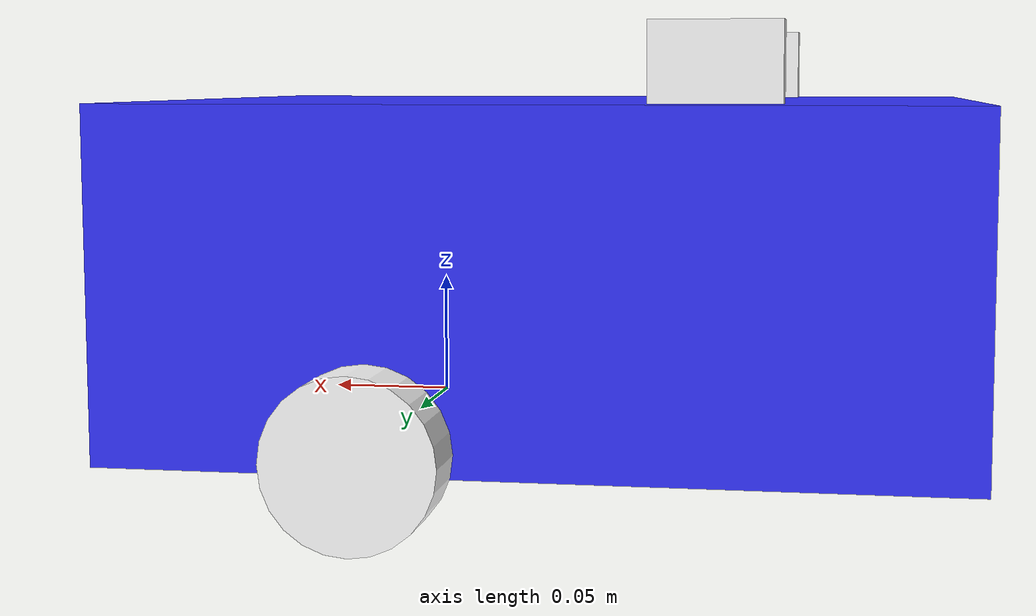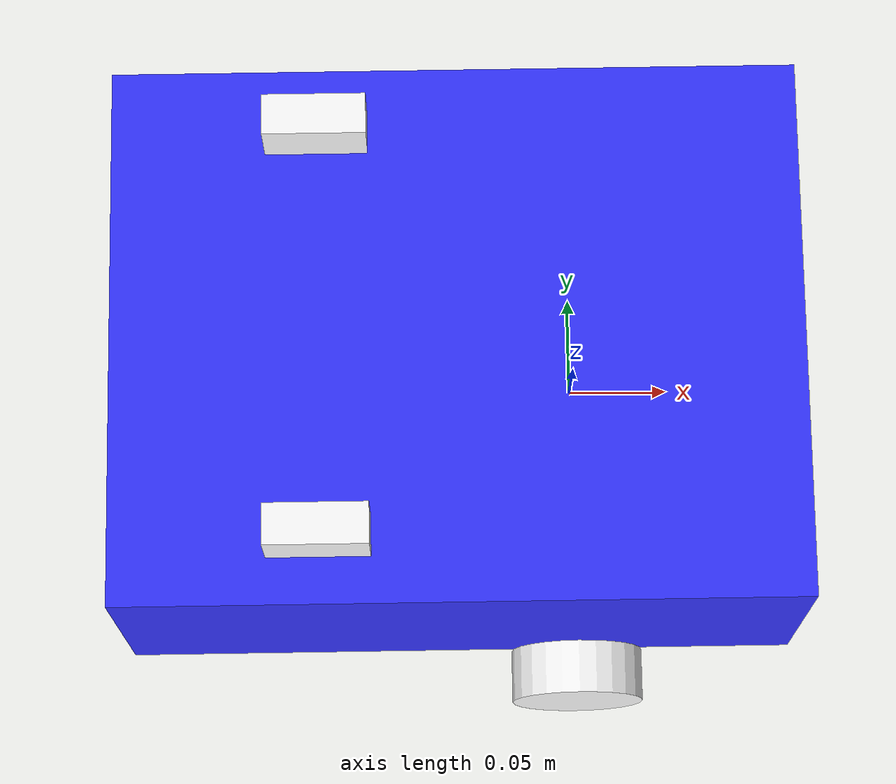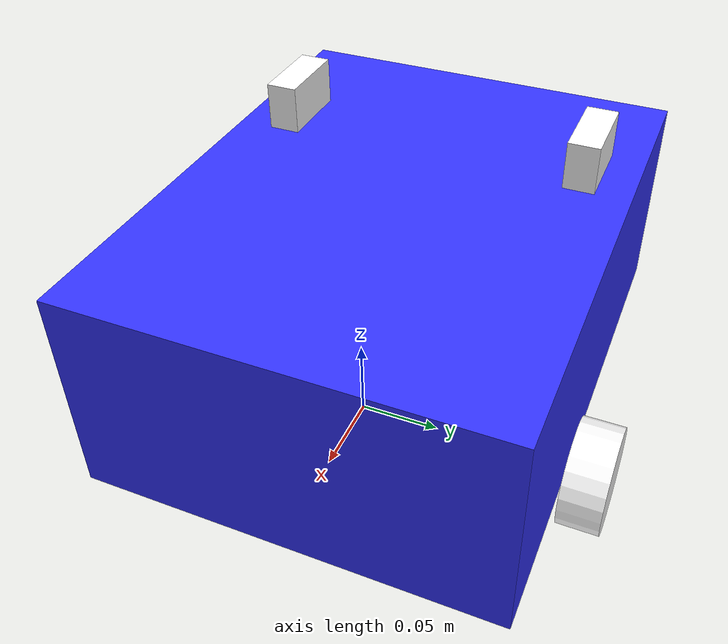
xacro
<?xml version="1.0" ?>
<robot name='robot' xmlns:xacro="http://ros.org/wiki/xacro">

    <xacro:include filename="$(find robot_description)/urdf/gazebo.urdf.xacro" />
    <!--xacro:include filename="$(find robot_description)/urdf/lidar.urdf.xacro" /-->
    <!--xacro:include filename="$(find robot_description)/urdf/depth.urdf.xacro" /-->

    <xacro:property name="chassis_length" value="0.335"/>
    <xacro:property name="chassis_width" value="0.265"/>
    <xacro:property name="chassis_height" value="0.138"/>
    <xacro:property name="wheel_radius" value="0.033"/>
    <xacro:property name="wheel_thickness" value="0.026"/>
    <xacro:property name="wheel_mass" value="0.05"/>
    <xacro:property name="wheel_offset_x" value="0.226"/>
    <xacro:property name="wheel_offset_y" value="0.1485"/>
    <xacro:property name="wheel_offset_z" value="0.01"/>
    <xacro:property name="caster_wheel_radius" value="0.01"/>
    <xacro:property name="caster_wheel_mass" value="0.01"/>
    <xacro:property name="caster_wheel_offset_x" value="0.075"/>
    <xacro:property name="caster_wheel_offset_z" value="${wheel_offset_z - wheel_radius + caster_wheel_radius}"/>
    <xacro:property name="mass" value="1.0"/>

    <!-- Добавляем свойства для ушей -->
    <xacro:property name="ear_length" value="0.05"/>
    <xacro:property name="ear_width" value="0.02"/>
    <xacro:property name="ear_height" value="0.1"/>
    <xacro:property name="ear_offset_x" value="0.1"/>
    <xacro:property name="ear_offset_y" value="0.1"/>
    <xacro:property name="ear_offset_z" value="${chassis_height/2 + ear_height/2}"/>

    <material name="white">
        <color rgba="1 1 1 1" />
    </material>

    <material name="orange">
        <color rgba="1 0.3 0.1 1"/>
    </material>

    <material name="blue">
        <color rgba="0.2 0.2 1 1"/>
    </material>

    <material name="black">
        <color rgba="0 0 0 1"/>
    </material>

    <material name="red">
        <color rgba="1 0 0 1"/>
    </material>

    <link name="base_link">
    </link>

    <link name="base_footprint">
    </link>

    <joint name="base_footprint_joint" type="fixed">
        <parent link="base_link"/>
        <child link="base_footprint"/>
        <origin xyz="0 0 -0.138" rpy="0 0 0"/>
    </joint>

    <joint name="chassis_joint" type="fixed">
        <parent link="base_link"/>
        <child link="chassis"/>
        <origin xyz="${-wheel_offset_x} 0 ${-wheel_offset_z}"/>
    </joint>

    <link name='chassis'>

    <inertial>
        <origin xyz="${chassis_length/2} 0 ${chassis_height/2}" rpy="0 0 0"/>
        <mass value="${mass}" />
        <inertia ixx="${(1/12) * mass * (chassis_width*chassis_width+chassis_height*chassis_height)}" ixy="0.0" ixz="0.0"
                 iyy="${(1/12) * mass * (chassis_length*chassis_length+chassis_height*chassis_height)}" iyz="0.0"
                 izz="${(1/12) * mass * (chassis_length*chassis_length+chassis_width*chassis_width)}" />
    </inertial>
    <visual>
        <origin xyz="${chassis_length/2} 0 ${chassis_height/2}"/>
        <geometry>
            <box size="${chassis_length} ${chassis_width} ${chassis_height}"/>
        </geometry>
        <material name="blue"/>
    </visual>
    <collision>
        <origin xyz="${chassis_length/2} 0 ${chassis_height/2}"/>
        <geometry>
            <box size="${chassis_length} ${chassis_width} ${chassis_height}"/>
        </geometry>
    </collision>
    </link>

    <gazebo reference="chassis">
        <material>Gazebo/Blue</material>
    </gazebo>

    <joint name="left_wheel_joint" type="continuous">
        <parent link="base_link"/>
        <child link="left_wheel"/>
        <origin xyz="0 ${wheel_offset_y} 0" rpy="-${pi/2} 0 0" />
        <axis xyz="0 0 1"/>
    </joint>

    <link name="left_wheel">
        <visual>
            <geometry>
                <cylinder radius="${wheel_radius}" length="${wheel_thickness}"/>
            </geometry>
            <material name="white"/>
        </visual>
        <collision>
            <geometry>
                <sphere radius="${wheel_radius}"/>
            </geometry>
        </collision>
        <inertial>
            <origin xyz="0 0 0" rpy="0 0 0"/>
            <mass value="${wheel_mass}" />
            <inertia ixx="${(1/12) * wheel_mass * (3*wheel_radius*wheel_radius + wheel_thickness*wheel_thickness)}" ixy="0.0" ixz="0.0"
                     iyy="${(1/12) * wheel_mass * (3*wheel_radius*wheel_radius + wheel_thickness*wheel_thickness)}" iyz="0.0"
                     izz="${(1/2) * wheel_mass * (wheel_radius*wheel_radius)}" />
        </inertial>
    </link>

    <gazebo reference="left_wheel">
        <material>Gazebo/White</material>
    </gazebo>

    <joint name="right_wheel_joint" type="continuous">
        <parent link="base_link"/>
        <child link="right_wheel"/>
        <origin xyz="0 ${-wheel_offset_y} 0" rpy="${pi/2} 0 0" />
        <axis xyz="0 0 -1"/>
    </joint>

    <link name="right_wheel">
        <visual>
            <geometry>
                <cylinder radius="${wheel_radius}" length="${wheel_thickness}"/>
            </geometry>
            <material name="white"/>
        </visual>
        <collision>
            <geometry>
                <sphere radius="${wheel_radius}"/>
            </geometry>
        </collision>
        <inertial>
            <origin xyz="0 0 0" rpy="0 0 0"/>
            <mass value="${wheel_mass}" />
            <inertia ixx="${(1/12) * wheel_mass * (3*wheel_radius*wheel_radius + wheel_thickness*wheel_thickness)}" ixy="0.0" ixz="0.0"
                     iyy="${(1/12) * wheel_mass * (3*wheel_radius*wheel_radius + wheel_thickness*wheel_thickness)}" iyz="0.0"
                     izz="${(1/2) * wheel_mass * (wheel_radius*wheel_radius)}" />
        </inertial>
    </link>

    <gazebo reference="right_wheel">
        <material>Gazebo/White</material>
    </gazebo>

    <joint name="caster_wheel_joint" type="fixed">
        <parent link="chassis"/>
        <child link="caster_wheel"/>
        <origin xyz="${caster_wheel_offset_x} 0 ${caster_wheel_offset_z}"/>
    </joint>

    <link name="caster_wheel">
        <visual>
            <geometry>
                <sphere radius="${caster_wheel_radius}"/>
            </geometry>
            <material name="white"/>
        </visual>
        <collision>
            <geometry>
                <sphere radius="${caster_wheel_radius}"/>
            </geometry>
        </collision>
        <inertial>
            <origin xyz="0 0 0" rpy="0 0 0"/>
            <mass value="${caster_wheel_mass}" />
            <inertia ixx="${(2/5) * caster_wheel_mass * (caster_wheel_radius*caster_wheel_radius)}" ixy="0.0" ixz="0.0"
                     iyy="${(2/5) * caster_wheel_mass * (caster_wheel_radius*caster_wheel_radius)}" iyz="0.0"
                     izz="${(2/5) * caster_wheel_mass * (caster_wheel_radius*caster_wheel_radius)}" />
        </inertial>
    </link>

    <gazebo reference="caster_wheel">
        <material>Gazebo/White</material>
        <mu1 value="0.001"/>
        <mu2 value="0.001"/>
    </gazebo>

    <!-- ears -->
    <joint name="left_ear_joint" type="fixed">
        <parent link="chassis"/>
        <child link="left_ear"/>
        <origin xyz="${ear_offset_x} ${ear_offset_y} ${ear_offset_z}"/>
    </joint>

    <link name="left_ear">
        <visual>
            <geometry>
                <box size="${ear_length} ${ear_width} ${ear_height}"/>
            </geometry>
            <material name="white"/>
        </visual>
        <collision>
            <geometry>
                <box size="${ear_length} ${ear_width} ${ear_height}"/>
            </geometry>
        </collision>
        <inertial>
            <origin xyz="0 0 0" rpy="0 0 0"/>
            <mass value="0.01" />
            <inertia ixx="${(1/12) * 0.01 * (ear_width*ear_width+ear_height*ear_height)}" ixy="0.0" ixz="0.0"
                     iyy="${(1/12) * 0.01 * (ear_length*ear_length+ear_height*ear_height)}" iyz="0.0"
                     izz="${(1/12) * 0.01 * (ear_length*ear_length+ear_width*ear_width)}" />
        </inertial>
    </link>

    <gazebo reference="left_ear">
        <material>Gazebo/White</material>
    </gazebo>

    <joint name="right_ear_joint" type="fixed">
        <parent link="chassis"/>
        <child link="right_ear"/>
        <origin xyz="${ear_offset_x} ${-ear_offset_y} ${ear_offset_z}"/>
    </joint>

    <link name="right_ear">
        <visual>
            <geometry>
                <box size="${ear_length} ${ear_width} ${ear_height}"/>
            </geometry>
            <material name="white"/>
        </visual>
        <collision>
            <geometry>
                <box size="${ear_length} ${ear_width} ${ear_height}"/>
            </geometry>
        </collision>
        <inertial>
            <origin xyz="0 0 0" rpy="0 0 0"/>
            <mass value="0.01" />
            <inertia ixx="${(1/12) * 0.01 * (ear_width*ear_width+ear_height*ear_height)}" ixy="0.0" ixz="0.0"
                     iyy="${(1/12) * 0.01 * (ear_length*ear_length+ear_height*ear_height)}" iyz="0.0"
                     izz="${(1/12) * 0.01 * (ear_length*ear_length+ear_width*ear_width)}" />
        </inertial>
    </link>

    <gazebo reference="right_ear">
        <material>Gazebo/White</material>
    </gazebo>

</robot>
